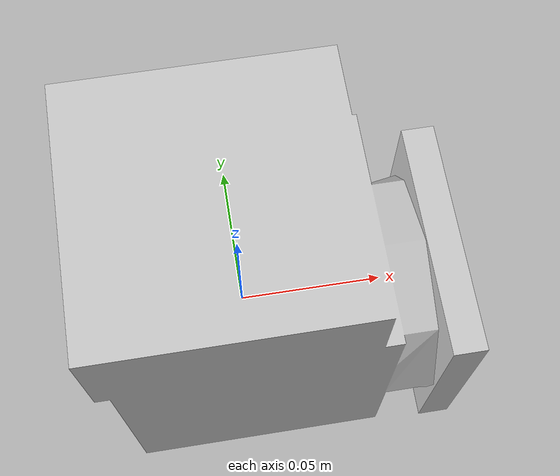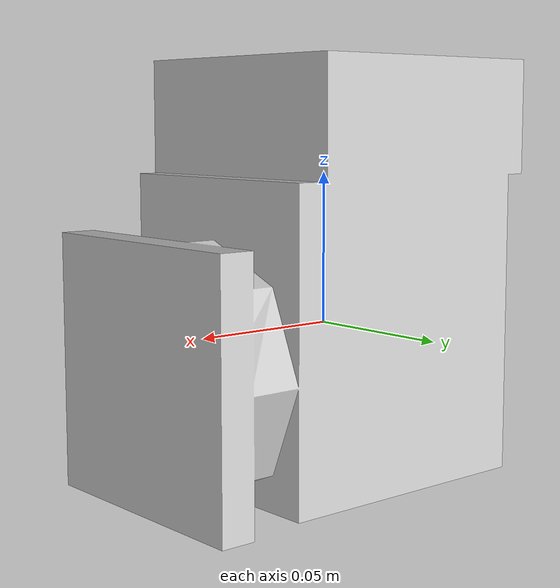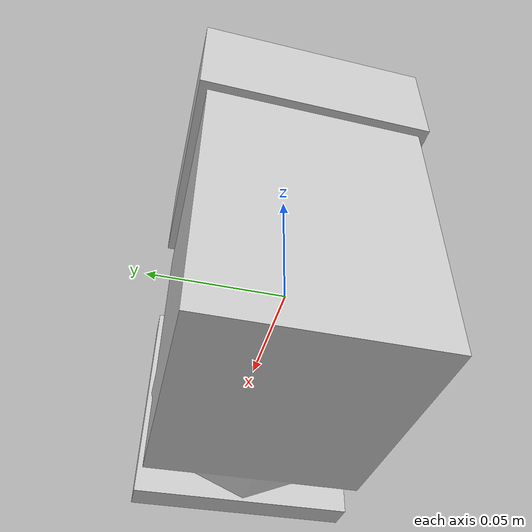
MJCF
<mujoco model="rail_des_gearbox">
  <default>
    <default class="visual">
      <geom group="2" type="mesh" contype="0" conaffinity="0"/>
    </default>
    <default class="collision">
      <geom group="3" type="mesh"/>
    </default>
  </default>
  <asset>
    <material name="material_rail_des_gearbox_0" specular="0.20000000000000004" shininess="1.0" rgba="0.80000000 0.80000000 0.80000000 1.0"/>
    <mesh file="rail_des_gearbox.obj"/>
  </asset>
  <worldbody>
    <body name="rail_des_gearbox">
      <geom material="material_rail_des_gearbox_0" mesh="rail_des_gearbox" class="visual"/>
      <geom mesh="rail_des_gearbox" class="collision"/>
    </body>
  </worldbody>
</mujoco>
